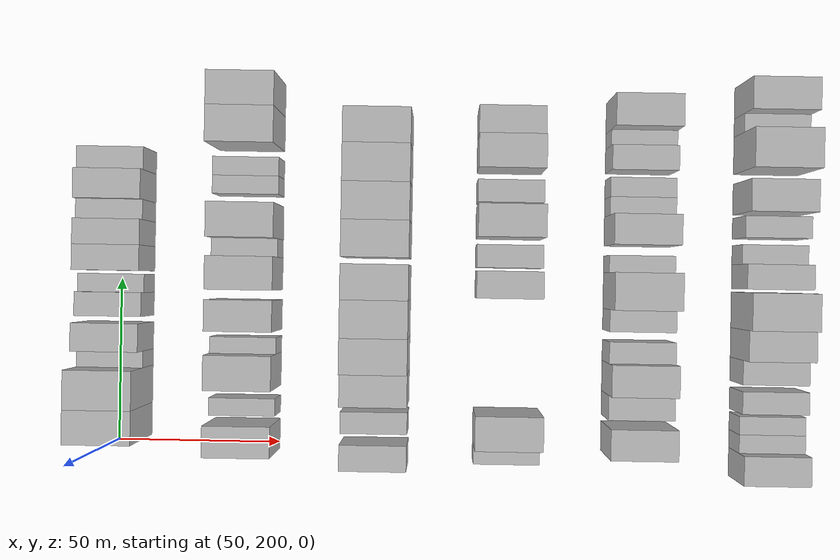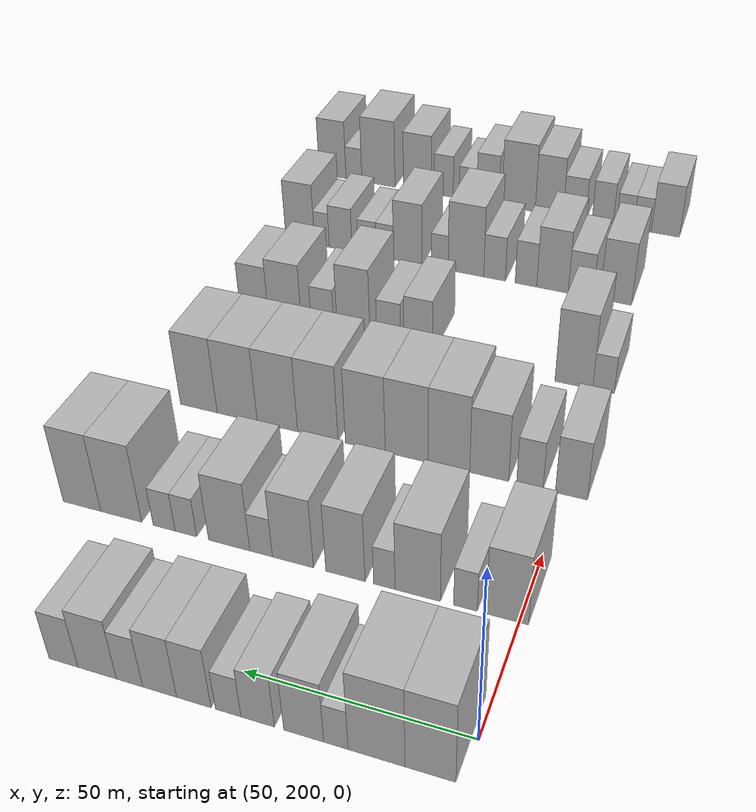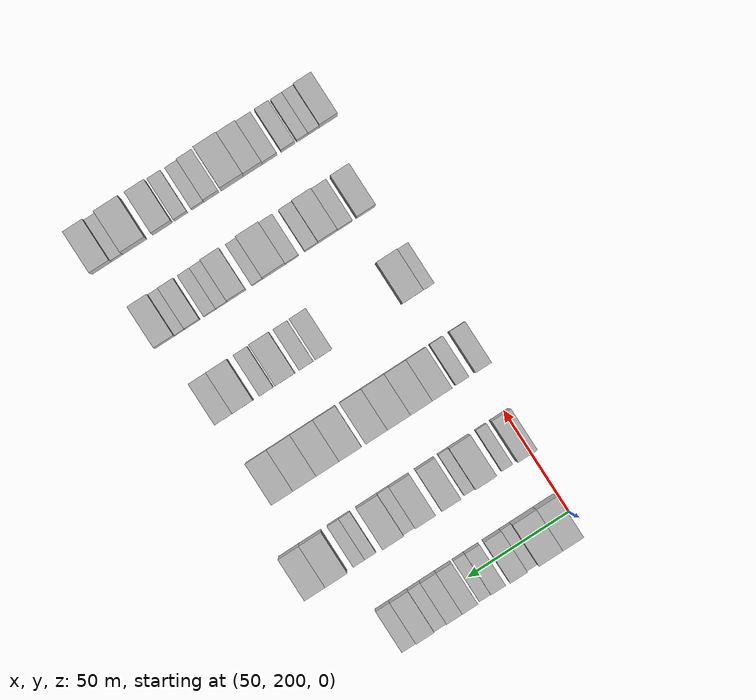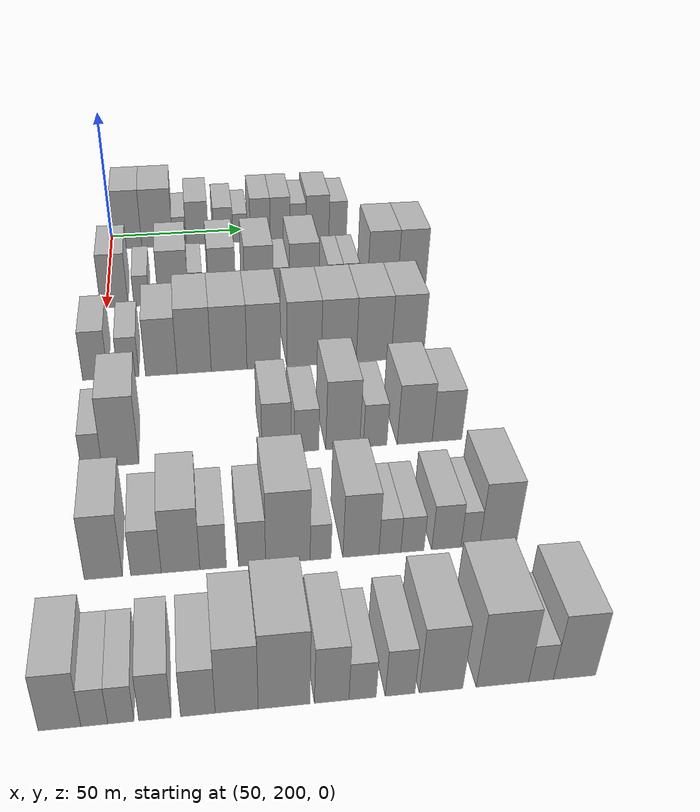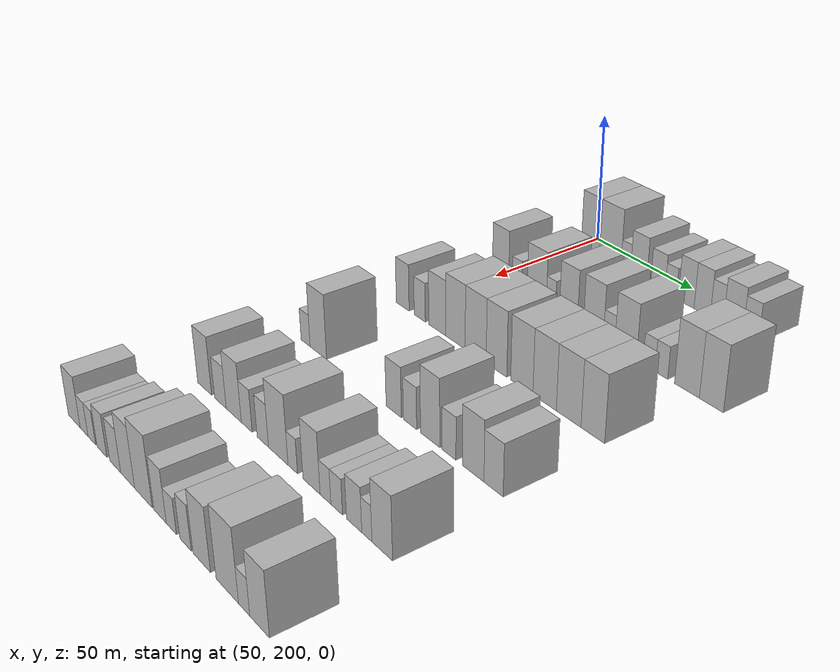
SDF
<sdf version="1.6">
 <world name="default">
  <model name="building_91">
   <static>1</static>
   <pose>50.0000 206.5983 0 0.000000 0.000000 0.000000</pose>
   <link name="link">
    <pose>0 0 12.00 0 0 0</pose>
    <collision name="collision"><geometry><box><size>20.0000 10.1096 24.0000</size></box></geometry></collision>
    <visual name="visual">
     <cast_shadows>0</cast_shadows>
     <geometry><box><size>20.0000 10.1096 24.0000</size></box></geometry>
     <material>
      <script>
       <uri>model://HANNAS_wall/materials/scripts</uri>
       <uri>model://HANNAS_wall/materials/textures</uri>
       <name>vrc/HANNAS_wall</name>
      </script>
     </material>
    </visual>
   </link>
  </model>
  <model name="building_92">
   <static>1</static>
   <pose>50.0000 217.4619 0 0.000000 0.000000 0.000000</pose>
   <link name="link">
    <pose>0 0 12.00 0 0 0</pose>
    <collision name="collision"><geometry><box><size>20.0000 11.6177 24.0000</size></box></geometry></collision>
    <visual name="visual">
     <cast_shadows>0</cast_shadows>
     <geometry><box><size>20.0000 11.6177 24.0000</size></box></geometry>
     <material>
      <script>
       <uri>model://HANNAS_wall/materials/scripts</uri>
       <uri>model://HANNAS_wall/materials/textures</uri>
       <name>vrc/HANNAS_wall</name>
      </script>
     </material>
    </visual>
   </link>
  </model>
  <model name="building_93">
   <static>1</static>
   <pose>50.0000 225.8013 0 0.000000 0.000000 0.000000</pose>
   <link name="link">
    <pose>0 0 6.00 0 0 0</pose>
    <collision name="collision"><geometry><box><size>20.0000 5.0611 12.0000</size></box></geometry></collision>
    <visual name="visual">
     <cast_shadows>0</cast_shadows>
     <geometry><box><size>20.0000 5.0611 12.0000</size></box></geometry>
     <material>
      <script>
       <uri>model://HANNAS_wall/materials/scripts</uri>
       <uri>model://HANNAS_wall/materials/textures</uri>
       <name>vrc/HANNAS_wall</name>
      </script>
     </material>
    </visual>
   </link>
  </model>
  <model name="building_94">
   <static>1</static>
   <pose>50.0000 232.5430 0 0.000000 0.000000 0.000000</pose>
   <link name="link">
    <pose>0 0 9.00 0 0 0</pose>
    <collision name="collision"><geometry><box><size>20.0000 8.4223 18.0000</size></box></geometry></collision>
    <visual name="visual">
     <cast_shadows>0</cast_shadows>
     <geometry><box><size>20.0000 8.4223 18.0000</size></box></geometry>
     <material>
      <script>
       <uri>model://HANNAS_wall/materials/scripts</uri>
       <uri>model://HANNAS_wall/materials/textures</uri>
       <name>vrc/HANNAS_wall</name>
      </script>
     </material>
    </visual>
   </link>
  </model>
  <model name="building_95">
   <static>1</static>
   <pose>50.0000 242.3531 0 0.000000 0.000000 0.000000</pose>
   <link name="link">
    <pose>0 0 7.50 0 0 0</pose>
    <collision name="collision"><geometry><box><size>20.0000 7.1978 15.0000</size></box></geometry></collision>
    <visual name="visual">
     <cast_shadows>0</cast_shadows>
     <geometry><box><size>20.0000 7.1978 15.0000</size></box></geometry>
     <material>
      <script>
       <uri>model://HANNAS_wall/materials/scripts</uri>
       <uri>model://HANNAS_wall/materials/textures</uri>
       <name>vrc/HANNAS_wall</name>
      </script>
     </material>
    </visual>
   </link>
  </model>
  <model name="building_96">
   <static>1</static>
   <pose>50.0000 248.7255 0 0.000000 0.000000 0.000000</pose>
   <link name="link">
    <pose>0 0 6.00 0 0 0</pose>
    <collision name="collision"><geometry><box><size>20.0000 5.5471 12.0000</size></box></geometry></collision>
    <visual name="visual">
     <cast_shadows>0</cast_shadows>
     <geometry><box><size>20.0000 5.5471 12.0000</size></box></geometry>
     <material>
      <script>
       <uri>model://HANNAS_wall/materials/scripts</uri>
       <uri>model://HANNAS_wall/materials/textures</uri>
       <name>vrc/HANNAS_wall</name>
      </script>
     </material>
    </visual>
   </link>
  </model>
  <model name="building_97">
   <static>1</static>
   <pose>50.0000 256.3204 0 0.000000 0.000000 0.000000</pose>
   <link name="link">
    <pose>0 0 9.00 0 0 0</pose>
    <collision name="collision"><geometry><box><size>20.0000 7.6427 18.0000</size></box></geometry></collision>
    <visual name="visual">
     <cast_shadows>0</cast_shadows>
     <geometry><box><size>20.0000 7.6427 18.0000</size></box></geometry>
     <material>
      <script>
       <uri>model://HANNAS_wall/materials/scripts</uri>
       <uri>model://HANNAS_wall/materials/textures</uri>
       <name>vrc/HANNAS_wall</name>
      </script>
     </material>
    </visual>
   </link>
  </model>
  <model name="building_98">
   <static>1</static>
   <pose>50.0000 263.9603 0 0.000000 0.000000 0.000000</pose>
   <link name="link">
    <pose>0 0 9.00 0 0 0</pose>
    <collision name="collision"><geometry><box><size>20.0000 7.6370 18.0000</size></box></geometry></collision>
    <visual name="visual">
     <cast_shadows>0</cast_shadows>
     <geometry><box><size>20.0000 7.6370 18.0000</size></box></geometry>
     <material>
      <script>
       <uri>model://HANNAS_wall/materials/scripts</uri>
       <uri>model://HANNAS_wall/materials/textures</uri>
       <name>vrc/HANNAS_wall</name>
      </script>
     </material>
    </visual>
   </link>
  </model>
  <model name="building_99">
   <static>1</static>
   <pose>50.0000 270.7845 0 0.000000 0.000000 0.000000</pose>
   <link name="link">
    <pose>0 0 7.50 0 0 0</pose>
    <collision name="collision"><geometry><box><size>20.0000 6.0113 15.0000</size></box></geometry></collision>
    <visual name="visual">
     <cast_shadows>0</cast_shadows>
     <geometry><box><size>20.0000 6.0113 15.0000</size></box></geometry>
     <material>
      <script>
       <uri>model://HANNAS_wall/materials/scripts</uri>
       <uri>model://HANNAS_wall/materials/textures</uri>
       <name>vrc/HANNAS_wall</name>
      </script>
     </material>
    </visual>
   </link>
  </model>
  <model name="building_100">
   <static>1</static>
   <pose>50.0000 278.2370 0 0.000000 0.000000 0.000000</pose>
   <link name="link">
    <pose>0 0 9.00 0 0 0</pose>
    <collision name="collision"><geometry><box><size>20.0000 8.8937 18.0000</size></box></geometry></collision>
    <visual name="visual">
     <cast_shadows>0</cast_shadows>
     <geometry><box><size>20.0000 8.8937 18.0000</size></box></geometry>
     <material>
      <script>
       <uri>model://HANNAS_wall/materials/scripts</uri>
       <uri>model://HANNAS_wall/materials/textures</uri>
       <name>vrc/HANNAS_wall</name>
      </script>
     </material>
    </visual>
   </link>
  </model>
  <model name="building_101">
   <static>1</static>
   <pose>50.0000 286.0947 0 0.000000 0.000000 0.000000</pose>
   <link name="link">
    <pose>0 0 7.50 0 0 0</pose>
    <collision name="collision"><geometry><box><size>20.0000 6.8218 15.0000</size></box></geometry></collision>
    <visual name="visual">
     <cast_shadows>0</cast_shadows>
     <geometry><box><size>20.0000 6.8218 15.0000</size></box></geometry>
     <material>
      <script>
       <uri>model://HANNAS_wall/materials/scripts</uri>
       <uri>model://HANNAS_wall/materials/textures</uri>
       <name>vrc/HANNAS_wall</name>
      </script>
     </material>
    </visual>
   </link>
  </model>
  <model name="building_221">
   <static>1</static>
   <pose>90.0000 202.6606 0 0.000000 0.000000 0.000000</pose>
   <link name="link">
    <pose>0 0 10.50 0 0 0</pose>
    <collision name="collision"><geometry><box><size>20.0000 9.3480 21.0000</size></box></geometry></collision>
    <visual name="visual">
     <cast_shadows>0</cast_shadows>
     <geometry><box><size>20.0000 9.3480 21.0000</size></box></geometry>
     <material>
      <script>
       <uri>model://HANNAS_wall/materials/scripts</uri>
       <uri>model://HANNAS_wall/materials/textures</uri>
       <name>vrc/HANNAS_wall</name>
      </script>
     </material>
    </visual>
   </link>
  </model>
  <model name="building_222">
   <static>1</static>
   <pose>90.0000 211.9902 0 0.000000 0.000000 0.000000</pose>
   <link name="link">
    <pose>0 0 6.00 0 0 0</pose>
    <collision name="collision"><geometry><box><size>20.0000 5.3112 12.0000</size></box></geometry></collision>
    <visual name="visual">
     <cast_shadows>0</cast_shadows>
     <geometry><box><size>20.0000 5.3112 12.0000</size></box></geometry>
     <material>
      <script>
       <uri>model://HANNAS_wall/materials/scripts</uri>
       <uri>model://HANNAS_wall/materials/textures</uri>
       <name>vrc/HANNAS_wall</name>
      </script>
     </material>
    </visual>
   </link>
  </model>
  <model name="building_223">
   <static>1</static>
   <pose>90.0000 222.8426 0 0.000000 0.000000 0.000000</pose>
   <link name="link">
    <pose>0 0 10.50 0 0 0</pose>
    <collision name="collision"><geometry><box><size>20.0000 10.3936 21.0000</size></box></geometry></collision>
    <visual name="visual">
     <cast_shadows>0</cast_shadows>
     <geometry><box><size>20.0000 10.3936 21.0000</size></box></geometry>
     <material>
      <script>
       <uri>model://HANNAS_wall/materials/scripts</uri>
       <uri>model://HANNAS_wall/materials/textures</uri>
       <name>vrc/HANNAS_wall</name>
      </script>
     </material>
    </visual>
   </link>
  </model>
  <model name="building_224">
   <static>1</static>
   <pose>90.0000 230.5463 0 0.000000 0.000000 0.000000</pose>
   <link name="link">
    <pose>0 0 6.00 0 0 0</pose>
    <collision name="collision"><geometry><box><size>20.0000 5.0138 12.0000</size></box></geometry></collision>
    <visual name="visual">
     <cast_shadows>0</cast_shadows>
     <geometry><box><size>20.0000 5.0138 12.0000</size></box></geometry>
     <material>
      <script>
       <uri>model://HANNAS_wall/materials/scripts</uri>
       <uri>model://HANNAS_wall/materials/textures</uri>
       <name>vrc/HANNAS_wall</name>
      </script>
     </material>
    </visual>
   </link>
  </model>
  <model name="building_225">
   <static>1</static>
   <pose>90.0000 239.7040 0 0.000000 0.000000 0.000000</pose>
   <link name="link">
    <pose>0 0 10.50 0 0 0</pose>
    <collision name="collision"><geometry><box><size>20.0000 9.3016 21.0000</size></box></geometry></collision>
    <visual name="visual">
     <cast_shadows>0</cast_shadows>
     <geometry><box><size>20.0000 9.3016 21.0000</size></box></geometry>
     <material>
      <script>
       <uri>model://HANNAS_wall/materials/scripts</uri>
       <uri>model://HANNAS_wall/materials/textures</uri>
       <name>vrc/HANNAS_wall</name>
      </script>
     </material>
    </visual>
   </link>
  </model>
  <model name="building_226">
   <static>1</static>
   <pose>90.0000 252.3283 0 0.000000 0.000000 0.000000</pose>
   <link name="link">
    <pose>0 0 10.50 0 0 0</pose>
    <collision name="collision"><geometry><box><size>20.0000 9.9472 21.0000</size></box></geometry></collision>
    <visual name="visual">
     <cast_shadows>0</cast_shadows>
     <geometry><box><size>20.0000 9.9472 21.0000</size></box></geometry>
     <material>
      <script>
       <uri>model://HANNAS_wall/materials/scripts</uri>
       <uri>model://HANNAS_wall/materials/textures</uri>
       <name>vrc/HANNAS_wall</name>
      </script>
     </material>
    </visual>
   </link>
  </model>
  <model name="building_227">
   <static>1</static>
   <pose>90.0000 260.0883 0 0.000000 0.000000 0.000000</pose>
   <link name="link">
    <pose>0 0 6.00 0 0 0</pose>
    <collision name="collision"><geometry><box><size>20.0000 5.5728 12.0000</size></box></geometry></collision>
    <visual name="visual">
     <cast_shadows>0</cast_shadows>
     <geometry><box><size>20.0000 5.5728 12.0000</size></box></geometry>
     <material>
      <script>
       <uri>model://HANNAS_wall/materials/scripts</uri>
       <uri>model://HANNAS_wall/materials/textures</uri>
       <name>vrc/HANNAS_wall</name>
      </script>
     </material>
    </visual>
   </link>
  </model>
  <model name="building_228">
   <static>1</static>
   <pose>90.0000 268.0406 0 0.000000 0.000000 0.000000</pose>
   <link name="link">
    <pose>0 0 10.50 0 0 0</pose>
    <collision name="collision"><geometry><box><size>20.0000 10.3318 21.0000</size></box></geometry></collision>
    <visual name="visual">
     <cast_shadows>0</cast_shadows>
     <geometry><box><size>20.0000 10.3318 21.0000</size></box></geometry>
     <material>
      <script>
       <uri>model://HANNAS_wall/materials/scripts</uri>
       <uri>model://HANNAS_wall/materials/textures</uri>
       <name>vrc/HANNAS_wall</name>
      </script>
     </material>
    </visual>
   </link>
  </model>
  <model name="building_229">
   <static>1</static>
   <pose>90.0000 278.9674 0 0.000000 0.000000 0.000000</pose>
   <link name="link">
    <pose>0 0 6.00 0 0 0</pose>
    <collision name="collision"><geometry><box><size>20.0000 5.5217 12.0000</size></box></geometry></collision>
    <visual name="visual">
     <cast_shadows>0</cast_shadows>
     <geometry><box><size>20.0000 5.5217 12.0000</size></box></geometry>
     <material>
      <script>
       <uri>model://HANNAS_wall/materials/scripts</uri>
       <uri>model://HANNAS_wall/materials/textures</uri>
       <name>vrc/HANNAS_wall</name>
      </script>
     </material>
    </visual>
   </link>
  </model>
  <model name="building_230">
   <static>1</static>
   <pose>90.0000 284.5549 0 0.000000 0.000000 0.000000</pose>
   <link name="link">
    <pose>0 0 6.00 0 0 0</pose>
    <collision name="collision"><geometry><box><size>20.0000 5.6533 12.0000</size></box></geometry></collision>
    <visual name="visual">
     <cast_shadows>0</cast_shadows>
     <geometry><box><size>20.0000 5.6533 12.0000</size></box></geometry>
     <material>
      <script>
       <uri>model://HANNAS_wall/materials/scripts</uri>
       <uri>model://HANNAS_wall/materials/textures</uri>
       <name>vrc/HANNAS_wall</name>
      </script>
     </material>
    </visual>
   </link>
  </model>
  <model name="building_231">
   <static>1</static>
   <pose>90.0000 295.7587 0 0.000000 0.000000 0.000000</pose>
   <link name="link">
    <pose>0 0 12.00 0 0 0</pose>
    <collision name="collision"><geometry><box><size>20.0000 10.7543 24.0000</size></box></geometry></collision>
    <visual name="visual">
     <cast_shadows>0</cast_shadows>
     <geometry><box><size>20.0000 10.7543 24.0000</size></box></geometry>
     <material>
      <script>
       <uri>model://HANNAS_wall/materials/scripts</uri>
       <uri>model://HANNAS_wall/materials/textures</uri>
       <name>vrc/HANNAS_wall</name>
      </script>
     </material>
    </visual>
   </link>
  </model>
  <model name="building_232">
   <static>1</static>
   <pose>90.0000 306.1596 0 0.000000 0.000000 0.000000</pose>
   <link name="link">
    <pose>0 0 12.00 0 0 0</pose>
    <collision name="collision"><geometry><box><size>20.0000 10.0475 24.0000</size></box></geometry></collision>
    <visual name="visual">
     <cast_shadows>0</cast_shadows>
     <geometry><box><size>20.0000 10.0475 24.0000</size></box></geometry>
     <material>
      <script>
       <uri>model://HANNAS_wall/materials/scripts</uri>
       <uri>model://HANNAS_wall/materials/textures</uri>
       <name>vrc/HANNAS_wall</name>
      </script>
     </material>
    </visual>
   </link>
  </model>
  <model name="building_359">
   <static>1</static>
   <pose>130.0000 198.0958 0 0.000000 0.000000 0.000000</pose>
   <link name="link">
    <pose>0 0 9.00 0 0 0</pose>
    <collision name="collision"><geometry><box><size>20.0000 7.7622 18.0000</size></box></geometry></collision>
    <visual name="visual">
     <cast_shadows>0</cast_shadows>
     <geometry><box><size>20.0000 7.7622 18.0000</size></box></geometry>
     <material>
      <script>
       <uri>model://HANNAS_wall/materials/scripts</uri>
       <uri>model://HANNAS_wall/materials/textures</uri>
       <name>vrc/HANNAS_wall</name>
      </script>
     </material>
    </visual>
   </link>
  </model>
  <model name="building_360">
   <static>1</static>
   <pose>130.0000 208.2339 0 0.000000 0.000000 0.000000</pose>
   <link name="link">
    <pose>0 0 7.50 0 0 0</pose>
    <collision name="collision"><geometry><box><size>20.0000 6.5139 15.0000</size></box></geometry></collision>
    <visual name="visual">
     <cast_shadows>0</cast_shadows>
     <geometry><box><size>20.0000 6.5139 15.0000</size></box></geometry>
     <material>
      <script>
       <uri>model://HANNAS_wall/materials/scripts</uri>
       <uri>model://HANNAS_wall/materials/textures</uri>
       <name>vrc/HANNAS_wall</name>
      </script>
     </material>
    </visual>
   </link>
  </model>
  <model name="building_361">
   <static>1</static>
   <pose>130.0000 218.3708 0 0.000000 0.000000 0.000000</pose>
   <link name="link">
    <pose>0 0 10.50 0 0 0</pose>
    <collision name="collision"><geometry><box><size>20.0000 9.7601 21.0000</size></box></geometry></collision>
    <visual name="visual">
     <cast_shadows>0</cast_shadows>
     <geometry><box><size>20.0000 9.7601 21.0000</size></box></geometry>
     <material>
      <script>
       <uri>model://HANNAS_wall/materials/scripts</uri>
       <uri>model://HANNAS_wall/materials/textures</uri>
       <name>vrc/HANNAS_wall</name>
      </script>
     </material>
    </visual>
   </link>
  </model>
  <model name="building_362">
   <static>1</static>
   <pose>130.0000 228.5489 0 0.000000 0.000000 0.000000</pose>
   <link name="link">
    <pose>0 0 12.00 0 0 0</pose>
    <collision name="collision"><geometry><box><size>20.0000 10.5961 24.0000</size></box></geometry></collision>
    <visual name="visual">
     <cast_shadows>0</cast_shadows>
     <geometry><box><size>20.0000 10.5961 24.0000</size></box></geometry>
     <material>
      <script>
       <uri>model://HANNAS_wall/materials/scripts</uri>
       <uri>model://HANNAS_wall/materials/textures</uri>
       <name>vrc/HANNAS_wall</name>
      </script>
     </material>
    </visual>
   </link>
  </model>
  <model name="building_363">
   <static>1</static>
   <pose>130.0000 239.4402 0 0.000000 0.000000 0.000000</pose>
   <link name="link">
    <pose>0 0 12.00 0 0 0</pose>
    <collision name="collision"><geometry><box><size>20.0000 11.1864 24.0000</size></box></geometry></collision>
    <visual name="visual">
     <cast_shadows>0</cast_shadows>
     <geometry><box><size>20.0000 11.1864 24.0000</size></box></geometry>
     <material>
      <script>
       <uri>model://HANNAS_wall/materials/scripts</uri>
       <uri>model://HANNAS_wall/materials/textures</uri>
       <name>vrc/HANNAS_wall</name>
      </script>
     </material>
    </visual>
   </link>
  </model>
  <model name="building_364">
   <static>1</static>
   <pose>130.0000 250.3060 0 0.000000 0.000000 0.000000</pose>
   <link name="link">
    <pose>0 0 12.00 0 0 0</pose>
    <collision name="collision"><geometry><box><size>20.0000 10.5453 24.0000</size></box></geometry></collision>
    <visual name="visual">
     <cast_shadows>0</cast_shadows>
     <geometry><box><size>20.0000 10.5453 24.0000</size></box></geometry>
     <material>
      <script>
       <uri>model://HANNAS_wall/materials/scripts</uri>
       <uri>model://HANNAS_wall/materials/textures</uri>
       <name>vrc/HANNAS_wall</name>
      </script>
     </material>
    </visual>
   </link>
  </model>
  <model name="building_365">
   <static>1</static>
   <pose>130.0000 263.0439 0 0.000000 0.000000 0.000000</pose>
   <link name="link">
    <pose>0 0 12.00 0 0 0</pose>
    <collision name="collision"><geometry><box><size>20.0000 10.9305 24.0000</size></box></geometry></collision>
    <visual name="visual">
     <cast_shadows>0</cast_shadows>
     <geometry><box><size>20.0000 10.9305 24.0000</size></box></geometry>
     <material>
      <script>
       <uri>model://HANNAS_wall/materials/scripts</uri>
       <uri>model://HANNAS_wall/materials/textures</uri>
       <name>vrc/HANNAS_wall</name>
      </script>
     </material>
    </visual>
   </link>
  </model>
  <model name="building_366">
   <static>1</static>
   <pose>130.0000 274.0709 0 0.000000 0.000000 0.000000</pose>
   <link name="link">
    <pose>0 0 12.00 0 0 0</pose>
    <collision name="collision"><geometry><box><size>20.0000 11.1236 24.0000</size></box></geometry></collision>
    <visual name="visual">
     <cast_shadows>0</cast_shadows>
     <geometry><box><size>20.0000 11.1236 24.0000</size></box></geometry>
     <material>
      <script>
       <uri>model://HANNAS_wall/materials/scripts</uri>
       <uri>model://HANNAS_wall/materials/textures</uri>
       <name>vrc/HANNAS_wall</name>
      </script>
     </material>
    </visual>
   </link>
  </model>
  <model name="building_367">
   <static>1</static>
   <pose>130.0000 285.2757 0 0.000000 0.000000 0.000000</pose>
   <link name="link">
    <pose>0 0 12.00 0 0 0</pose>
    <collision name="collision"><geometry><box><size>20.0000 11.2860 24.0000</size></box></geometry></collision>
    <visual name="visual">
     <cast_shadows>0</cast_shadows>
     <geometry><box><size>20.0000 11.2860 24.0000</size></box></geometry>
     <material>
      <script>
       <uri>model://HANNAS_wall/materials/scripts</uri>
       <uri>model://HANNAS_wall/materials/textures</uri>
       <name>vrc/HANNAS_wall</name>
      </script>
     </material>
    </visual>
   </link>
  </model>
  <model name="building_368">
   <static>1</static>
   <pose>130.0000 296.1528 0 0.000000 0.000000 0.000000</pose>
   <link name="link">
    <pose>0 0 12.00 0 0 0</pose>
    <collision name="collision"><geometry><box><size>20.0000 10.4681 24.0000</size></box></geometry></collision>
    <visual name="visual">
     <cast_shadows>0</cast_shadows>
     <geometry><box><size>20.0000 10.4681 24.0000</size></box></geometry>
     <material>
      <script>
       <uri>model://HANNAS_wall/materials/scripts</uri>
       <uri>model://HANNAS_wall/materials/textures</uri>
       <name>vrc/HANNAS_wall</name>
      </script>
     </material>
    </visual>
   </link>
  </model>
  <model name="building_498">
   <static>1</static>
   <pose>170.0000 198.8734 0 0.000000 0.000000 0.000000</pose>
   <link name="link">
    <pose>0 0 6.00 0 0 0</pose>
    <collision name="collision"><geometry><box><size>20.0000 5.7114 12.0000</size></box></geometry></collision>
    <visual name="visual">
     <cast_shadows>0</cast_shadows>
     <geometry><box><size>20.0000 5.7114 12.0000</size></box></geometry>
     <material>
      <script>
       <uri>model://HANNAS_wall/materials/scripts</uri>
       <uri>model://HANNAS_wall/materials/textures</uri>
       <name>vrc/HANNAS_wall</name>
      </script>
     </material>
    </visual>
   </link>
  </model>
  <model name="building_499">
   <static>1</static>
   <pose>170.0000 206.8108 0 0.000000 0.000000 0.000000</pose>
   <link name="link">
    <pose>0 0 12.00 0 0 0</pose>
    <collision name="collision"><geometry><box><size>20.0000 10.1634 24.0000</size></box></geometry></collision>
    <visual name="visual">
     <cast_shadows>0</cast_shadows>
     <geometry><box><size>20.0000 10.1634 24.0000</size></box></geometry>
     <material>
      <script>
       <uri>model://HANNAS_wall/materials/scripts</uri>
       <uri>model://HANNAS_wall/materials/textures</uri>
       <name>vrc/HANNAS_wall</name>
      </script>
     </material>
    </visual>
   </link>
  </model>
  <model name="building_500">
   <static>1</static>
   <pose>170.0000 250.1605 0 0.000000 0.000000 0.000000</pose>
   <link name="link">
    <pose>0 0 9.00 0 0 0</pose>
    <collision name="collision"><geometry><box><size>20.0000 8.1787 18.0000</size></box></geometry></collision>
    <visual name="visual">
     <cast_shadows>0</cast_shadows>
     <geometry><box><size>20.0000 8.1787 18.0000</size></box></geometry>
     <material>
      <script>
       <uri>model://HANNAS_wall/materials/scripts</uri>
       <uri>model://HANNAS_wall/materials/textures</uri>
       <name>vrc/HANNAS_wall</name>
      </script>
     </material>
    </visual>
   </link>
  </model>
  <model name="building_501">
   <static>1</static>
   <pose>170.0000 258.7029 0 0.000000 0.000000 0.000000</pose>
   <link name="link">
    <pose>0 0 7.50 0 0 0</pose>
    <collision name="collision"><geometry><box><size>20.0000 6.9062 15.0000</size></box></geometry></collision>
    <visual name="visual">
     <cast_shadows>0</cast_shadows>
     <geometry><box><size>20.0000 6.9062 15.0000</size></box></geometry>
     <material>
      <script>
       <uri>model://HANNAS_wall/materials/scripts</uri>
       <uri>model://HANNAS_wall/materials/textures</uri>
       <name>vrc/HANNAS_wall</name>
      </script>
     </material>
    </visual>
   </link>
  </model>
  <model name="building_502">
   <static>1</static>
   <pose>170.0000 268.9979 0 0.000000 0.000000 0.000000</pose>
   <link name="link">
    <pose>0 0 12.00 0 0 0</pose>
    <collision name="collision"><geometry><box><size>20.0000 9.6838 24.0000</size></box></geometry></collision>
    <visual name="visual">
     <cast_shadows>0</cast_shadows>
     <geometry><box><size>20.0000 9.6838 24.0000</size></box></geometry>
     <material>
      <script>
       <uri>model://HANNAS_wall/materials/scripts</uri>
       <uri>model://HANNAS_wall/materials/textures</uri>
       <name>vrc/HANNAS_wall</name>
      </script>
     </material>
    </visual>
   </link>
  </model>
  <model name="building_503">
   <static>1</static>
   <pose>170.0000 278.2299 0 0.000000 0.000000 0.000000</pose>
   <link name="link">
    <pose>0 0 7.50 0 0 0</pose>
    <collision name="collision"><geometry><box><size>20.0000 6.7801 15.0000</size></box></geometry></collision>
    <visual name="visual">
     <cast_shadows>0</cast_shadows>
     <geometry><box><size>20.0000 6.7801 15.0000</size></box></geometry>
     <material>
      <script>
       <uri>model://HANNAS_wall/materials/scripts</uri>
       <uri>model://HANNAS_wall/materials/textures</uri>
       <name>vrc/HANNAS_wall</name>
      </script>
     </material>
    </visual>
   </link>
  </model>
  <model name="building_504">
   <static>1</static>
   <pose>170.0000 289.6608 0 0.000000 0.000000 0.000000</pose>
   <link name="link">
    <pose>0 0 10.50 0 0 0</pose>
    <collision name="collision"><geometry><box><size>20.0000 10.0816 21.0000</size></box></geometry></collision>
    <visual name="visual">
     <cast_shadows>0</cast_shadows>
     <geometry><box><size>20.0000 10.0816 21.0000</size></box></geometry>
     <material>
      <script>
       <uri>model://HANNAS_wall/materials/scripts</uri>
       <uri>model://HANNAS_wall/materials/textures</uri>
       <name>vrc/HANNAS_wall</name>
      </script>
     </material>
    </visual>
   </link>
  </model>
  <model name="building_505">
   <static>1</static>
   <pose>170.0000 299.0312 0 0.000000 0.000000 0.000000</pose>
   <link name="link">
    <pose>0 0 9.00 0 0 0</pose>
    <collision name="collision"><geometry><box><size>20.0000 8.6591 18.0000</size></box></geometry></collision>
    <visual name="visual">
     <cast_shadows>0</cast_shadows>
     <geometry><box><size>20.0000 8.6591 18.0000</size></box></geometry>
     <material>
      <script>
       <uri>model://HANNAS_wall/materials/scripts</uri>
       <uri>model://HANNAS_wall/materials/textures</uri>
       <name>vrc/HANNAS_wall</name>
      </script>
     </material>
    </visual>
   </link>
  </model>
  <model name="building_632">
   <static>1</static>
   <pose>210.0000 203.7488 0 0.000000 0.000000 0.000000</pose>
   <link name="link">
    <pose>0 0 10.50 0 0 0</pose>
    <collision name="collision"><geometry><box><size>20.0000 9.1812 21.0000</size></box></geometry></collision>
    <visual name="visual">
     <cast_shadows>0</cast_shadows>
     <geometry><box><size>20.0000 9.1812 21.0000</size></box></geometry>
     <material>
      <script>
       <uri>model://HANNAS_wall/materials/scripts</uri>
       <uri>model://HANNAS_wall/materials/textures</uri>
       <name>vrc/HANNAS_wall</name>
      </script>
     </material>
    </visual>
   </link>
  </model>
  <model name="building_633">
   <static>1</static>
   <pose>210.0000 214.0474 0 0.000000 0.000000 0.000000</pose>
   <link name="link">
    <pose>0 0 7.50 0 0 0</pose>
    <collision name="collision"><geometry><box><size>20.0000 7.4161 15.0000</size></box></geometry></collision>
    <visual name="visual">
     <cast_shadows>0</cast_shadows>
     <geometry><box><size>20.0000 7.4161 15.0000</size></box></geometry>
     <material>
      <script>
       <uri>model://HANNAS_wall/materials/scripts</uri>
       <uri>model://HANNAS_wall/materials/textures</uri>
       <name>vrc/HANNAS_wall</name>
      </script>
     </material>
    </visual>
   </link>
  </model>
  <model name="building_634">
   <static>1</static>
   <pose>210.0000 222.4698 0 0.000000 0.000000 0.000000</pose>
   <link name="link">
    <pose>0 0 10.50 0 0 0</pose>
    <collision name="collision"><geometry><box><size>20.0000 9.4289 21.0000</size></box></geometry></collision>
    <visual name="visual">
     <cast_shadows>0</cast_shadows>
     <geometry><box><size>20.0000 9.4289 21.0000</size></box></geometry>
     <material>
      <script>
       <uri>model://HANNAS_wall/materials/scripts</uri>
       <uri>model://HANNAS_wall/materials/textures</uri>
       <name>vrc/HANNAS_wall</name>
      </script>
     </material>
    </visual>
   </link>
  </model>
  <model name="building_635">
   <static>1</static>
   <pose>210.0000 230.4435 0 0.000000 0.000000 0.000000</pose>
   <link name="link">
    <pose>0 0 7.50 0 0 0</pose>
    <collision name="collision"><geometry><box><size>20.0000 6.5185 15.0000</size></box></geometry></collision>
    <visual name="visual">
     <cast_shadows>0</cast_shadows>
     <geometry><box><size>20.0000 6.5185 15.0000</size></box></geometry>
     <material>
      <script>
       <uri>model://HANNAS_wall/materials/scripts</uri>
       <uri>model://HANNAS_wall/materials/textures</uri>
       <name>vrc/HANNAS_wall</name>
      </script>
     </material>
    </visual>
   </link>
  </model>
  <model name="building_636">
   <static>1</static>
   <pose>210.0000 240.0272 0 0.000000 0.000000 0.000000</pose>
   <link name="link">
    <pose>0 0 7.50 0 0 0</pose>
    <collision name="collision"><geometry><box><size>20.0000 6.6489 15.0000</size></box></geometry></collision>
    <visual name="visual">
     <cast_shadows>0</cast_shadows>
     <geometry><box><size>20.0000 6.6489 15.0000</size></box></geometry>
     <material>
      <script>
       <uri>model://HANNAS_wall/materials/scripts</uri>
       <uri>model://HANNAS_wall/materials/textures</uri>
       <name>vrc/HANNAS_wall</name>
      </script>
     </material>
    </visual>
   </link>
  </model>
  <model name="building_637">
   <static>1</static>
   <pose>210.0000 248.8917 0 0.000000 0.000000 0.000000</pose>
   <link name="link">
    <pose>0 0 12.00 0 0 0</pose>
    <collision name="collision"><geometry><box><size>20.0000 11.0801 24.0000</size></box></geometry></collision>
    <visual name="visual">
     <cast_shadows>0</cast_shadows>
     <geometry><box><size>20.0000 11.0801 24.0000</size></box></geometry>
     <material>
      <script>
       <uri>model://HANNAS_wall/materials/scripts</uri>
       <uri>model://HANNAS_wall/materials/textures</uri>
       <name>vrc/HANNAS_wall</name>
      </script>
     </material>
    </visual>
   </link>
  </model>
  <model name="building_638">
   <static>1</static>
   <pose>210.0000 257.0480 0 0.000000 0.000000 0.000000</pose>
   <link name="link">
    <pose>0 0 6.00 0 0 0</pose>
    <collision name="collision"><geometry><box><size>20.0000 5.2326 12.0000</size></box></geometry></collision>
    <visual name="visual">
     <cast_shadows>0</cast_shadows>
     <geometry><box><size>20.0000 5.2326 12.0000</size></box></geometry>
     <material>
      <script>
       <uri>model://HANNAS_wall/materials/scripts</uri>
       <uri>model://HANNAS_wall/materials/textures</uri>
       <name>vrc/HANNAS_wall</name>
      </script>
     </material>
    </visual>
   </link>
  </model>
  <model name="building_639">
   <static>1</static>
   <pose>210.0000 267.2052 0 0.000000 0.000000 0.000000</pose>
   <link name="link">
    <pose>0 0 10.50 0 0 0</pose>
    <collision name="collision"><geometry><box><size>20.0000 9.0817 21.0000</size></box></geometry></collision>
    <visual name="visual">
     <cast_shadows>0</cast_shadows>
     <geometry><box><size>20.0000 9.0817 21.0000</size></box></geometry>
     <material>
      <script>
       <uri>model://HANNAS_wall/materials/scripts</uri>
       <uri>model://HANNAS_wall/materials/textures</uri>
       <name>vrc/HANNAS_wall</name>
      </script>
     </material>
    </visual>
   </link>
  </model>
  <model name="building_640">
   <static>1</static>
   <pose>210.0000 274.5303 0 0.000000 0.000000 0.000000</pose>
   <link name="link">
    <pose>0 0 6.00 0 0 0</pose>
    <collision name="collision"><geometry><box><size>20.0000 5.5685 12.0000</size></box></geometry></collision>
    <visual name="visual">
     <cast_shadows>0</cast_shadows>
     <geometry><box><size>20.0000 5.5685 12.0000</size></box></geometry>
     <material>
      <script>
       <uri>model://HANNAS_wall/materials/scripts</uri>
       <uri>model://HANNAS_wall/materials/textures</uri>
       <name>vrc/HANNAS_wall</name>
      </script>
     </material>
    </visual>
   </link>
  </model>
  <model name="building_641">
   <static>1</static>
   <pose>210.0000 280.2534 0 0.000000 0.000000 0.000000</pose>
   <link name="link">
    <pose>0 0 6.00 0 0 0</pose>
    <collision name="collision"><geometry><box><size>20.0000 5.8778 12.0000</size></box></geometry></collision>
    <visual name="visual">
     <cast_shadows>0</cast_shadows>
     <geometry><box><size>20.0000 5.8778 12.0000</size></box></geometry>
     <material>
      <script>
       <uri>model://HANNAS_wall/materials/scripts</uri>
       <uri>model://HANNAS_wall/materials/textures</uri>
       <name>vrc/HANNAS_wall</name>
      </script>
     </material>
    </visual>
   </link>
  </model>
  <model name="building_642">
   <static>1</static>
   <pose>210.0000 288.9337 0 0.000000 0.000000 0.000000</pose>
   <link name="link">
    <pose>0 0 7.50 0 0 0</pose>
    <collision name="collision"><geometry><box><size>20.0000 7.4828 15.0000</size></box></geometry></collision>
    <visual name="visual">
     <cast_shadows>0</cast_shadows>
     <geometry><box><size>20.0000 7.4828 15.0000</size></box></geometry>
     <material>
      <script>
       <uri>model://HANNAS_wall/materials/scripts</uri>
       <uri>model://HANNAS_wall/materials/textures</uri>
       <name>vrc/HANNAS_wall</name>
      </script>
     </material>
    </visual>
   </link>
  </model>
  <model name="building_643">
   <static>1</static>
   <pose>210.0000 295.0964 0 0.000000 0.000000 0.000000</pose>
   <link name="link">
    <pose>0 0 6.00 0 0 0</pose>
    <collision name="collision"><geometry><box><size>20.0000 4.8426 12.0000</size></box></geometry></collision>
    <visual name="visual">
     <cast_shadows>0</cast_shadows>
     <geometry><box><size>20.0000 4.8426 12.0000</size></box></geometry>
     <material>
      <script>
       <uri>model://HANNAS_wall/materials/scripts</uri>
       <uri>model://HANNAS_wall/materials/textures</uri>
       <name>vrc/HANNAS_wall</name>
      </script>
     </material>
    </visual>
   </link>
  </model>
  <model name="building_644">
   <static>1</static>
   <pose>210.0000 302.3147 0 0.000000 0.000000 0.000000</pose>
   <link name="link">
    <pose>0 0 10.50 0 0 0</pose>
    <collision name="collision"><geometry><box><size>20.0000 9.5941 21.0000</size></box></geometry></collision>
    <visual name="visual">
     <cast_shadows>0</cast_shadows>
     <geometry><box><size>20.0000 9.5941 21.0000</size></box></geometry>
     <material>
      <script>
       <uri>model://HANNAS_wall/materials/scripts</uri>
       <uri>model://HANNAS_wall/materials/textures</uri>
       <name>vrc/HANNAS_wall</name>
      </script>
     </material>
    </visual>
   </link>
  </model>
  <model name="building_768">
   <static>1</static>
   <pose>250.0000 196.2713 0 0.000000 0.000000 0.000000</pose>
   <link name="link">
    <pose>0 0 9.00 0 0 0</pose>
    <collision name="collision"><geometry><box><size>20.0000 8.8108 18.0000</size></box></geometry></collision>
    <visual name="visual">
     <cast_shadows>0</cast_shadows>
     <geometry><box><size>20.0000 8.8108 18.0000</size></box></geometry>
     <material>
      <script>
       <uri>model://HANNAS_wall/materials/scripts</uri>
       <uri>model://HANNAS_wall/materials/textures</uri>
       <name>vrc/HANNAS_wall</name>
      </script>
     </material>
    </visual>
   </link>
  </model>
  <model name="building_769">
   <static>1</static>
   <pose>250.0000 203.4690 0 0.000000 0.000000 0.000000</pose>
   <link name="link">
    <pose>0 0 6.00 0 0 0</pose>
    <collision name="collision"><geometry><box><size>20.0000 5.5846 12.0000</size></box></geometry></collision>
    <visual name="visual">
     <cast_shadows>0</cast_shadows>
     <geometry><box><size>20.0000 5.5846 12.0000</size></box></geometry>
     <material>
      <script>
       <uri>model://HANNAS_wall/materials/scripts</uri>
       <uri>model://HANNAS_wall/materials/textures</uri>
       <name>vrc/HANNAS_wall</name>
      </script>
     </material>
    </visual>
   </link>
  </model>
  <model name="building_770">
   <static>1</static>
   <pose>250.0000 209.0066 0 0.000000 0.000000 0.000000</pose>
   <link name="link">
    <pose>0 0 6.00 0 0 0</pose>
    <collision name="collision"><geometry><box><size>20.0000 5.4905 12.0000</size></box></geometry></collision>
    <visual name="visual">
     <cast_shadows>0</cast_shadows>
     <geometry><box><size>20.0000 5.4905 12.0000</size></box></geometry>
     <material>
      <script>
       <uri>model://HANNAS_wall/materials/scripts</uri>
       <uri>model://HANNAS_wall/materials/textures</uri>
       <name>vrc/HANNAS_wall</name>
      </script>
     </material>
    </visual>
   </link>
  </model>
  <model name="building_771">
   <static>1</static>
   <pose>250.0000 216.1416 0 0.000000 0.000000 0.000000</pose>
   <link name="link">
    <pose>0 0 7.50 0 0 0</pose>
    <collision name="collision"><geometry><box><size>20.0000 6.7796 15.0000</size></box></geometry></collision>
    <visual name="visual">
     <cast_shadows>0</cast_shadows>
     <geometry><box><size>20.0000 6.7796 15.0000</size></box></geometry>
     <material>
      <script>
       <uri>model://HANNAS_wall/materials/scripts</uri>
       <uri>model://HANNAS_wall/materials/textures</uri>
       <name>vrc/HANNAS_wall</name>
      </script>
     </material>
    </visual>
   </link>
  </model>
  <model name="building_772">
   <static>1</static>
   <pose>250.0000 225.1986 0 0.000000 0.000000 0.000000</pose>
   <link name="link">
    <pose>0 0 7.50 0 0 0</pose>
    <collision name="collision"><geometry><box><size>20.0000 7.3344 15.0000</size></box></geometry></collision>
    <visual name="visual">
     <cast_shadows>0</cast_shadows>
     <geometry><box><size>20.0000 7.3344 15.0000</size></box></geometry>
     <material>
      <script>
       <uri>model://HANNAS_wall/materials/scripts</uri>
       <uri>model://HANNAS_wall/materials/textures</uri>
       <name>vrc/HANNAS_wall</name>
      </script>
     </material>
    </visual>
   </link>
  </model>
  <model name="building_773">
   <static>1</static>
   <pose>250.0000 233.4462 0 0.000000 0.000000 0.000000</pose>
   <link name="link">
    <pose>0 0 10.50 0 0 0</pose>
    <collision name="collision"><geometry><box><size>20.0000 9.1609 21.0000</size></box></geometry></collision>
    <visual name="visual">
     <cast_shadows>0</cast_shadows>
     <geometry><box><size>20.0000 9.1609 21.0000</size></box></geometry>
     <material>
      <script>
       <uri>model://HANNAS_wall/materials/scripts</uri>
       <uri>model://HANNAS_wall/materials/textures</uri>
       <name>vrc/HANNAS_wall</name>
      </script>
     </material>
    </visual>
   </link>
  </model>
  <model name="building_774">
   <static>1</static>
   <pose>250.0000 243.5722 0 0.000000 0.000000 0.000000</pose>
   <link name="link">
    <pose>0 0 12.00 0 0 0</pose>
    <collision name="collision"><geometry><box><size>20.0000 11.0911 24.0000</size></box></geometry></collision>
    <visual name="visual">
     <cast_shadows>0</cast_shadows>
     <geometry><box><size>20.0000 11.0911 24.0000</size></box></geometry>
     <material>
      <script>
       <uri>model://HANNAS_wall/materials/scripts</uri>
       <uri>model://HANNAS_wall/materials/textures</uri>
       <name>vrc/HANNAS_wall</name>
      </script>
     </material>
    </visual>
   </link>
  </model>
  <model name="building_775">
   <static>1</static>
   <pose>250.0000 253.8601 0 0.000000 0.000000 0.000000</pose>
   <link name="link">
    <pose>0 0 9.00 0 0 0</pose>
    <collision name="collision"><geometry><box><size>20.0000 7.4846 18.0000</size></box></geometry></collision>
    <visual name="visual">
     <cast_shadows>0</cast_shadows>
     <geometry><box><size>20.0000 7.4846 18.0000</size></box></geometry>
     <material>
      <script>
       <uri>model://HANNAS_wall/materials/scripts</uri>
       <uri>model://HANNAS_wall/materials/textures</uri>
       <name>vrc/HANNAS_wall</name>
      </script>
     </material>
    </visual>
   </link>
  </model>
  <model name="building_776">
   <static>1</static>
   <pose>250.0000 260.5798 0 0.000000 0.000000 0.000000</pose>
   <link name="link">
    <pose>0 0 6.00 0 0 0</pose>
    <collision name="collision"><geometry><box><size>20.0000 5.9547 12.0000</size></box></geometry></collision>
    <visual name="visual">
     <cast_shadows>0</cast_shadows>
     <geometry><box><size>20.0000 5.9547 12.0000</size></box></geometry>
     <material>
      <script>
       <uri>model://HANNAS_wall/materials/scripts</uri>
       <uri>model://HANNAS_wall/materials/textures</uri>
       <name>vrc/HANNAS_wall</name>
      </script>
     </material>
    </visual>
   </link>
  </model>
  <model name="building_777">
   <static>1</static>
   <pose>250.0000 268.8106 0 0.000000 0.000000 0.000000</pose>
   <link name="link">
    <pose>0 0 7.50 0 0 0</pose>
    <collision name="collision"><geometry><box><size>20.0000 6.5070 15.0000</size></box></geometry></collision>
    <visual name="visual">
     <cast_shadows>0</cast_shadows>
     <geometry><box><size>20.0000 6.5070 15.0000</size></box></geometry>
     <material>
      <script>
       <uri>model://HANNAS_wall/materials/scripts</uri>
       <uri>model://HANNAS_wall/materials/textures</uri>
       <name>vrc/HANNAS_wall</name>
      </script>
     </material>
    </visual>
   </link>
  </model>
  <model name="building_778">
   <static>1</static>
   <pose>250.0000 277.8726 0 0.000000 0.000000 0.000000</pose>
   <link name="link">
    <pose>0 0 10.50 0 0 0</pose>
    <collision name="collision"><geometry><box><size>20.0000 9.6171 21.0000</size></box></geometry></collision>
    <visual name="visual">
     <cast_shadows>0</cast_shadows>
     <geometry><box><size>20.0000 9.6171 21.0000</size></box></geometry>
     <material>
      <script>
       <uri>model://HANNAS_wall/materials/scripts</uri>
       <uri>model://HANNAS_wall/materials/textures</uri>
       <name>vrc/HANNAS_wall</name>
      </script>
     </material>
    </visual>
   </link>
  </model>
  <model name="building_779">
   <static>1</static>
   <pose>250.0000 291.5364 0 0.000000 0.000000 0.000000</pose>
   <link name="link">
    <pose>0 0 12.00 0 0 0</pose>
    <collision name="collision"><geometry><box><size>20.0000 11.7105 24.0000</size></box></geometry></collision>
    <visual name="visual">
     <cast_shadows>0</cast_shadows>
     <geometry><box><size>20.0000 11.7105 24.0000</size></box></geometry>
     <material>
      <script>
       <uri>model://HANNAS_wall/materials/scripts</uri>
       <uri>model://HANNAS_wall/materials/textures</uri>
       <name>vrc/HANNAS_wall</name>
      </script>
     </material>
    </visual>
   </link>
  </model>
  <model name="building_780">
   <static>1</static>
   <pose>250.0000 300.2102 0 0.000000 0.000000 0.000000</pose>
   <link name="link">
    <pose>0 0 6.00 0 0 0</pose>
    <collision name="collision"><geometry><box><size>20.0000 5.6371 12.0000</size></box></geometry></collision>
    <visual name="visual">
     <cast_shadows>0</cast_shadows>
     <geometry><box><size>20.0000 5.6371 12.0000</size></box></geometry>
     <material>
      <script>
       <uri>model://HANNAS_wall/materials/scripts</uri>
       <uri>model://HANNAS_wall/materials/textures</uri>
       <name>vrc/HANNAS_wall</name>
      </script>
     </material>
    </visual>
   </link>
  </model>
  <model name="building_781">
   <static>1</static>
   <pose>250.0000 307.8213 0 0.000000 0.000000 0.000000</pose>
   <link name="link">
    <pose>0 0 10.50 0 0 0</pose>
    <collision name="collision"><geometry><box><size>20.0000 9.5851 21.0000</size></box></geometry></collision>
    <visual name="visual">
     <cast_shadows>0</cast_shadows>
     <geometry><box><size>20.0000 9.5851 21.0000</size></box></geometry>
     <material>
      <script>
       <uri>model://HANNAS_wall/materials/scripts</uri>
       <uri>model://HANNAS_wall/materials/textures</uri>
       <name>vrc/HANNAS_wall</name>
      </script>
     </material>
    </visual>
   </link>
  </model>
 </world>
</sdf>
